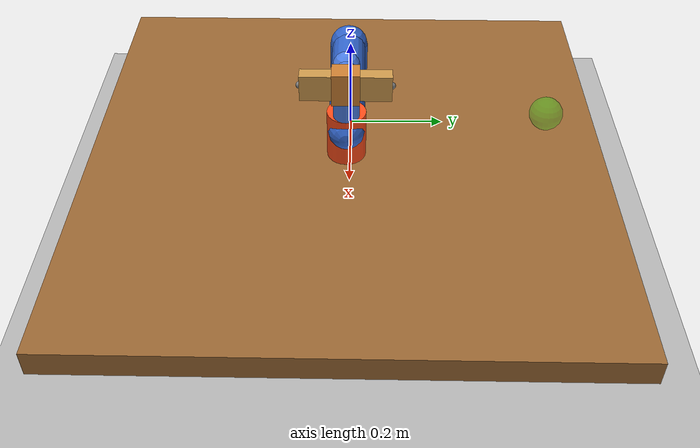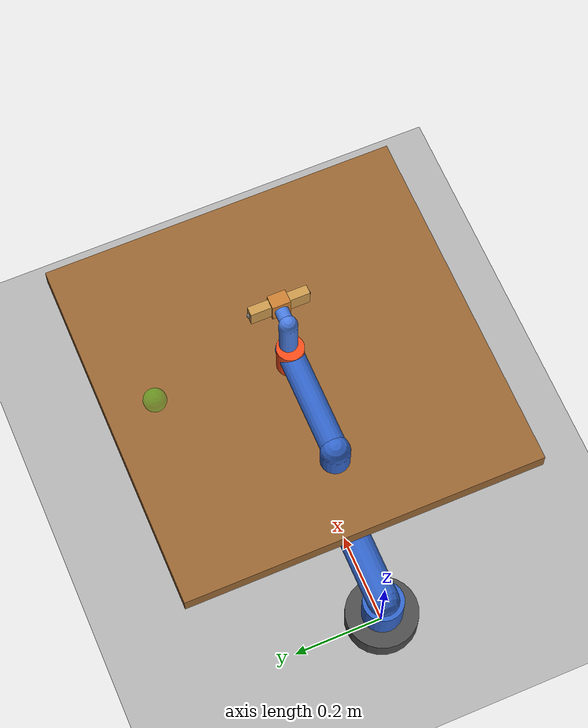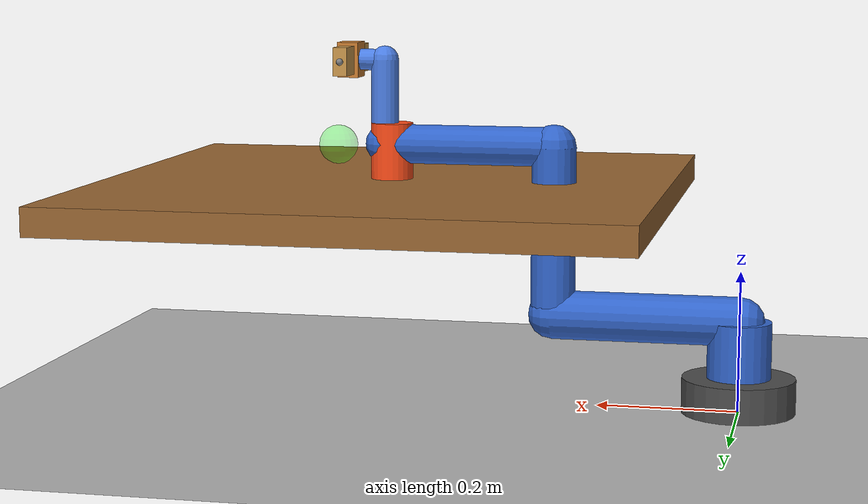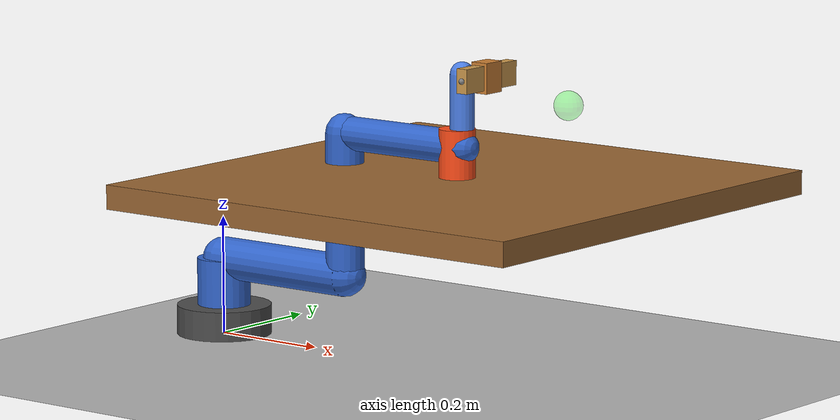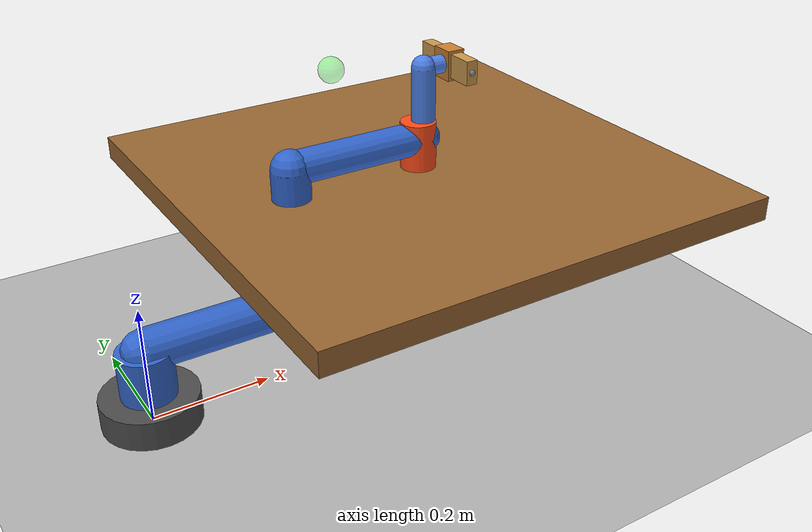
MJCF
<?xml version="1.0" ?>
<mujoco model="xarm_6dof">

  <compiler angle="radian" coordinate="local"/>
  <option timestep="0.002" gravity="0 0 -9.81" integrator="RK4" />

  <default>
    <joint damping="0.5" armature="0.02" frictionloss="0.1"/>
    <geom contype="1" conaffinity="1" friction="0.8 0.01 0.01"/>
    <motor ctrllimited="true"/>
  </default>

  <worldbody>
    <!-- Global lighting -->
    <light pos="0 0 2" dir="0 0 -1" diffuse="0.8 0.8 0.8"/>

    <!-- Ground floor -->
    <geom name="floor" type="plane" pos="0 0 0" size="2 2 0.01"
          rgba="0.7 0.7 0.7 1" contype="1" conaffinity="1"/>

    <!-- Table surface (workspace) -->
    <body name="table" pos="0.5 0 0.3">
      <geom type="box" size="0.4 0.4 0.02" rgba="0.6 0.4 0.2 1"
            contype="1" conaffinity="1" mass="10"/>
      <site name="table_surface" pos="0 0 0.02" size="0.01"/>
    </body>

    <!-- Robot base (fixed to world) -->
    <body name="base" pos="0 0 0">
      <!-- Base cylinder -->
      <geom type="cylinder" fromto="0 0 0 0 0 0.05" size="0.08"
            rgba="0.3 0.3 0.3 1" mass="2"/>

      <!-- ========== JOINT 1: Base Yaw (Z-axis rotation) ========== -->
      <body name="link1" pos="0 0 0.05">
        <joint name="joint1" type="hinge" axis="0 0 1"
               range="-6.283 6.283" damping="1.0" frictionloss="0.05"/>
        <inertial pos="0 0 0.04" mass="1.5" diaginertia="0.005 0.005 0.003"/>
        <geom type="cylinder" fromto="0 0 0 0 0 0.08" size="0.045"
              rgba="0.2 0.4 0.8 1" mass="1.5"/>

        <!-- ========== JOINT 2: Shoulder Pitch (Y-axis rotation) ========== -->
        <body name="link2" pos="0 0 0.08">
          <joint name="joint2" type="hinge" axis="0 1 0"
                 range="-3.665 3.665" damping="1.0" frictionloss="0.05"/>
          <inertial pos="0.1325 0 0" mass="1.2" diaginertia="0.007 0.012 0.012"/>
          <geom type="capsule" fromto="0 0 0 0.265 0 0" size="0.035"
                rgba="0.2 0.4 0.8 1" mass="1.2"/>

          <!-- ========== JOINT 3: Shoulder Roll (X-axis rotation) ========== -->
          <body name="link3" pos="0.265 0 0">
            <joint name="joint3" type="hinge" axis="1 0 0"
                   range="-6.109 6.109" damping="0.9" frictionloss="0.04"/>
            <inertial pos="0 0 0.12" mass="1.0" diaginertia="0.008 0.008 0.004"/>
            <geom type="capsule" fromto="0 0 0 0 0 0.24" size="0.032"
                  rgba="0.2 0.4 0.8 1" mass="1.0"/>

            <!-- ========== JOINT 4: Elbow Pitch (Y-axis rotation) ========== -->
            <body name="link4" pos="0 0 0.24">
              <joint name="joint4" type="hinge" axis="0 1 0"
                     range="-4.555 4.555" damping="0.8" frictionloss="0.04"/>
              <inertial pos="0.1225 0 0" mass="0.9" diaginertia="0.004 0.009 0.009"/>
              <geom type="capsule" fromto="0 0 0 0.245 0 0" size="0.028"
                    rgba="0.2 0.4 0.8 1" mass="0.9"/>

              <!-- ========== JOINT 5: Wrist Pitch (Y-axis rotation) ========== -->
              <body name="link5" pos="0.245 0 0">
                <joint name="joint5" type="hinge" axis="0 1 0"
                       range="-6.109 6.109" damping="0.5" frictionloss="0.03"/>
                <inertial pos="0 0 0.06" mass="0.5" diaginertia="0.002 0.003 0.003"/>
                <geom type="capsule" fromto="0 0 0 0 0 0.12" size="0.020"
                      rgba="0.3 0.5 0.9 1" mass="0.5"/>

                <!-- ========== JOINT 6: Wrist Roll (Z-axis rotation) ========== -->
                <body name="link6" pos="0 0 0.12">
                  <joint name="joint6" type="hinge" axis="0 0 1"
                         range="-6.283 6.283" damping="0.4" frictionloss="0.02"/>
                  <inertial pos="0.025 0 0" mass="0.3" diaginertia="0.0008 0.0008 0.0005"/>
                  <geom type="capsule" fromto="0 0 0 0.05 0 0" size="0.015"
                        rgba="0.3 0.5 0.9 1" mass="0.3"/>

                  <!-- ========== END EFFECTOR: Parallel Gripper ========== -->
                  <body name="ee_mount" pos="0.05 0 0">
                    <!-- Gripper palm (fixed reference) -->
                    <inertial pos="0 0 0" mass="0.1" diaginertia="0.0005 0.0005 0.0005"/>
                    <geom type="box" size="0.015 0.02 0.025"
                          rgba="0.8 0.5 0.2 1" mass="0.1"/>

                    <!-- Left finger (moves in Y+) -->
                    <body name="gripper_left" pos="0 0.015 0">
                      <joint name="gripper_left" type="slide" axis="0 1 0"
                             range="0.0 0.05" damping="0.2" frictionloss="0.01"/>
                      <inertial pos="0 0.025 0" mass="0.08" diaginertia="0.00015 0.00015 0.00015"/>
                      <geom type="box" size="0.01 0.025 0.02" pos="0 0.025 0"
                            rgba="0.8 0.6 0.3 1" mass="0.08"/>
                      <site name="finger_left" pos="0 0.05 0" size="0.005"/>
                    </body>

                    <!-- Right finger (moves in Y-) -->
                    <body name="gripper_right" pos="0 -0.015 0">
                      <joint name="gripper_right" type="slide" axis="0 -1 0"
                             range="0.0 0.05" damping="0.2" frictionloss="0.01"/>
                      <inertial pos="0 -0.025 0" mass="0.08" diaginertia="0.00015 0.00015 0.00015"/>
                      <geom type="box" size="0.01 0.025 0.02" pos="0 -0.025 0"
                            rgba="0.8 0.6 0.3 1" mass="0.08"/>
                      <site name="finger_right" pos="0 -0.05 0" size="0.005"/>
                    </body>

                    <!-- End-effector reference site for kinematics and sensors -->
                    <site name="ee_site" pos="0 0 0" size="0.012"
                          rgba="1 1 0 1"/>

                    <!-- Wrist camera (eye-in-hand perspective) -->
                    <camera name="camera_wrist" pos="0.02 0 0.035"
                            xyaxes="1 0 0 0 0 1" fovy="45"/>
                  </body>
                </body>
              </body>
            </body>
          </body>
        </body>
      </body>
    </body>

    <!-- ========== MANIPULANDUM: Medium object ========== -->
    <!-- Matches "pick and place" task in dataset -->
    <body name="object" pos="0.5 0.0 0.35">
      <freejoint name="object_joint"/>
      <inertial pos="0 0 0" mass="0.1" diaginertia="0.00004 0.00004 0.00004"/>
      <geom type="cylinder" size="0.03 0.05" rgba="1 0.3 0.1 1"
            mass="0.1" contype="1" conaffinity="1" friction="1.0"/>
      <site name="object_site" size="0.012" rgba="0 1 0 1"/>
    </body>

    <!-- ========== TARGET ZONE (visual marker) ========== -->
    <body name="target_zone" pos="0.5 0.3 0.4" mocap="true">
      <geom type="sphere" size="0.025" rgba="0 1 0 0.3"
            contype="0" conaffinity="0"/>
    </body>

    <!-- ========== CAMERAS ========== -->
    <!-- Primary RGB camera: matches dataset perspective -->
    <camera name="camera_rgb" pos="0.6 0 0.9"
            xyaxes="0 -1 0 -0.8 0 0.6" fovy="45"/>

    <!-- Side view for visualization -->
    <camera name="camera_side" pos="-0.2 1.0 0.6"
            xyaxes="-1 0 0 0 -0.6 0.8" fovy="45"/>
  </worldbody>

  <!-- ========== ACTUATORS (joint motors) ========== -->
  <actuator>
    <!-- Six arm joint motors (torque-controlled) -->
    <motor name="act_j1" joint="joint1" gear="120" ctrlrange="-20 20"/>
    <motor name="act_j2" joint="joint2" gear="110" ctrlrange="-15 15"/>
    <motor name="act_j3" joint="joint3" gear="110" ctrlrange="-15 15"/>
    <motor name="act_j4" joint="joint4" gear="95"  ctrlrange="-10 10"/>
    <motor name="act_j5" joint="joint5" gear="80"  ctrlrange="-8 8"/>
    <motor name="act_j6" joint="joint6" gear="70"  ctrlrange="-6 6"/>
    <!-- Gripper motors (force-controlled, parallel drive) -->
    <motor name="act_gripper_left" joint="gripper_left" gear="25" ctrlrange="0 3"/>
    <motor name="act_gripper_right" joint="gripper_right" gear="25" ctrlrange="0 3"/>
  </actuator>

  <!-- ========== SENSORS ========== -->
  <sensor>
    <!-- Joint proprioception: positions (6-DOF) -->
    <jointpos name="q_j1" joint="joint1"/>
    <jointpos name="q_j2" joint="joint2"/>
    <jointpos name="q_j3" joint="joint3"/>
    <jointpos name="q_j4" joint="joint4"/>
    <jointpos name="q_j5" joint="joint5"/>
    <jointpos name="q_j6" joint="joint6"/>

    <!-- Gripper finger positions (2-DOF) -->
    <jointpos name="q_grip_left" joint="gripper_left"/>
    <jointpos name="q_grip_right" joint="gripper_right"/>

    <!-- Joint velocities (6-DOF) -->
    <jointvel name="qd_j1" joint="joint1"/>
    <jointvel name="qd_j2" joint="joint2"/>
    <jointvel name="qd_j3" joint="joint3"/>
    <jointvel name="qd_j4" joint="joint4"/>
    <jointvel name="qd_j5" joint="joint5"/>
    <jointvel name="qd_j6" joint="joint6"/>

    <!-- Gripper velocities (2-DOF) -->
    <jointvel name="qd_grip_left" joint="gripper_left"/>
    <jointvel name="qd_grip_right" joint="gripper_right"/>

    <!-- End-effector position (ground truth for kinematics evaluation) -->
    <framepos name="ee_pos" objtype="site" objname="ee_site"/>

    <!-- Object position (ground truth for task evaluation) -->
    <framepos name="obj_pos" objtype="site" objname="object_site"/>

    <!-- ========== LiDAR via Rangefinders (32-ray dome) ========== -->
    <!-- Horizontal: 8 rays, Vertical: 4 layers = 32 rays total -->
    <!-- Layer 0 (elevation 0°) -->
    <rangefinder name="lidar_00_h0_v0" site="ee_site" cutoff="1.2"/>
    <rangefinder name="lidar_01_h45_v0" site="ee_site" cutoff="1.2"/>
    <rangefinder name="lidar_02_h90_v0" site="ee_site" cutoff="1.2"/>
    <rangefinder name="lidar_03_h135_v0" site="ee_site" cutoff="1.2"/>
    <rangefinder name="lidar_04_h180_v0" site="ee_site" cutoff="1.2"/>
    <rangefinder name="lidar_05_h225_v0" site="ee_site" cutoff="1.2"/>
    <rangefinder name="lidar_06_h270_v0" site="ee_site" cutoff="1.2"/>
    <rangefinder name="lidar_07_h315_v0" site="ee_site" cutoff="1.2"/>

    <!-- Layer 1 (elevation ~22.5°) -->
    <rangefinder name="lidar_08_h0_v1" site="ee_site" cutoff="1.2"/>
    <rangefinder name="lidar_09_h45_v1" site="ee_site" cutoff="1.2"/>
    <rangefinder name="lidar_10_h90_v1" site="ee_site" cutoff="1.2"/>
    <rangefinder name="lidar_11_h135_v1" site="ee_site" cutoff="1.2"/>
    <rangefinder name="lidar_12_h180_v1" site="ee_site" cutoff="1.2"/>
    <rangefinder name="lidar_13_h225_v1" site="ee_site" cutoff="1.2"/>
    <rangefinder name="lidar_14_h270_v1" site="ee_site" cutoff="1.2"/>
    <rangefinder name="lidar_15_h315_v1" site="ee_site" cutoff="1.2"/>

    <!-- Layer 2 (elevation ~45.0°) -->
    <rangefinder name="lidar_16_h0_v2" site="ee_site" cutoff="1.2"/>
    <rangefinder name="lidar_17_h45_v2" site="ee_site" cutoff="1.2"/>
    <rangefinder name="lidar_18_h90_v2" site="ee_site" cutoff="1.2"/>
    <rangefinder name="lidar_19_h135_v2" site="ee_site" cutoff="1.2"/>
    <rangefinder name="lidar_20_h180_v2" site="ee_site" cutoff="1.2"/>
    <rangefinder name="lidar_21_h225_v2" site="ee_site" cutoff="1.2"/>
    <rangefinder name="lidar_22_h270_v2" site="ee_site" cutoff="1.2"/>
    <rangefinder name="lidar_23_h315_v2" site="ee_site" cutoff="1.2"/>

    <!-- Layer 3 (elevation ~67.5°) -->
    <rangefinder name="lidar_24_h0_v3" site="ee_site" cutoff="1.2"/>
    <rangefinder name="lidar_25_h45_v3" site="ee_site" cutoff="1.2"/>
    <rangefinder name="lidar_26_h90_v3" site="ee_site" cutoff="1.2"/>
    <rangefinder name="lidar_27_h135_v3" site="ee_site" cutoff="1.2"/>
    <rangefinder name="lidar_28_h180_v3" site="ee_site" cutoff="1.2"/>
    <rangefinder name="lidar_29_h225_v3" site="ee_site" cutoff="1.2"/>
    <rangefinder name="lidar_30_h270_v3" site="ee_site" cutoff="1.2"/>
    <rangefinder name="lidar_31_h315_v3" site="ee_site" cutoff="1.2"/>
  </sensor>

</mujoco>
